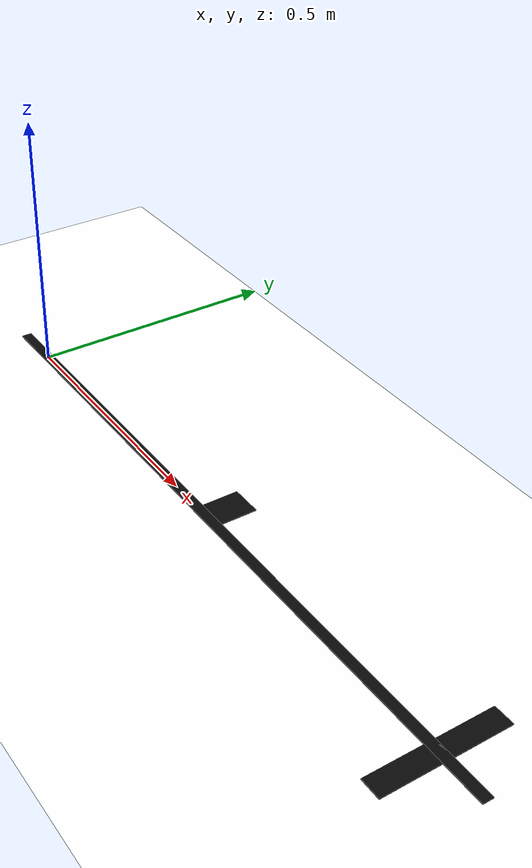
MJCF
<mujoco model="practice_line">
  <compiler angle="degree" coordinate="local"/>
  <option timestep="0.001" iterations="20" solver="Newton" gravity="0 0 -9.81"/>

  <visual>
    <headlight diffuse="0.6 0.6 0.6" ambient="0.5 0.5 0.5" specular="0 0 0"/>
  </visual>

  <worldbody>
    <light pos="0 0 1.5" dir="0 0 -1"/>

    <geom name="floor" type="plane" pos="0.5 0 0" size="1.0 0.5 0.05"
          rgba="1 1 1 1" friction="0.9 0.02 0.0001"/>

    <!-- The line: 20 mm wide, from the spawn point to past the stop
         bar. Raised 1 mm so the downward raycast hits it, not the
         floor. -->
    <geom name="line_main" type="box"
          pos="0.60 0 0.001" size="0.70 0.010 0.001"
          rgba="0.03 0.03 0.03 1"/>

    <!-- Branch stub: darkens the LEFT sensor only. A follower that
         steers toward a single dark sensor peels off onto this; the
         correct behaviour is to hold course until it passes. -->
    <geom name="line_branch" type="box"
          pos="0.60 0.045 0.001" size="0.030 0.035 0.001"
          rgba="0.03 0.03 0.03 1"/>

    <!-- Stop bar: both sensors dark at once = intersection. -->
    <geom name="line_stop" type="box"
          pos="1.20 0 0.001" size="0.020 0.12 0.001"
          rgba="0.03 0.03 0.03 1"/>
  </worldbody>
</mujoco>
